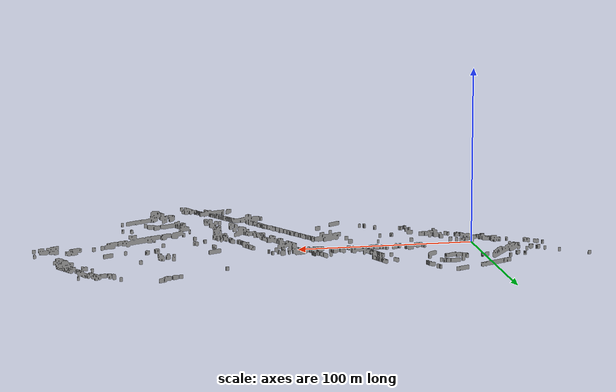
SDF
<?xml version="1.0"?>
<!-- Generated by scripts/generate_hanyang_gazebo_model.py; do not edit. -->
<!-- map_yaml_sha256=9f36ab2d3d35a667996570b45babb7cb3ba8bd1e706a971af22603da1220e7ff -->
<!-- map_pgm_sha256=c89d791f71fe3d1705ae04724acf8ff6ba0ccc351fc162fe996982f9469a0278 -->
<!-- dimensions=3220x2361 resolution=0.1 origin=[-60.1,-148.4,0] -->
<!-- occupied_value=0 free_value=254 unknown_value=205 source_occupied_points=16629 final_occupied_cells=210223 boundary_segments=32712 boundary_faces=65424 wall_height=2 -->
<sdf version="1.6">
  <model name="hanyang_aegimun_occupancy_walls">
    <static>true</static>
    <pose>0 0 0 0 0 0</pose>
    <link name="occupancy_walls">
      <pose>0 0 0 0 0 0</pose>
      <collision name="occupancy_walls_collision">
        <geometry><mesh><uri>model://hanyang_aegimun_occupancy_walls/meshes/occupancy_walls.obj</uri></mesh></geometry>
      </collision>
      <visual name="occupancy_walls_visual">
        <geometry><mesh><uri>model://hanyang_aegimun_occupancy_walls/meshes/occupancy_walls.obj</uri></mesh></geometry>
        <material><ambient>0.45 0.45 0.45 1</ambient><diffuse>0.55 0.55 0.55 1</diffuse></material>
      </visual>
    </link>
  </model>
</sdf>
